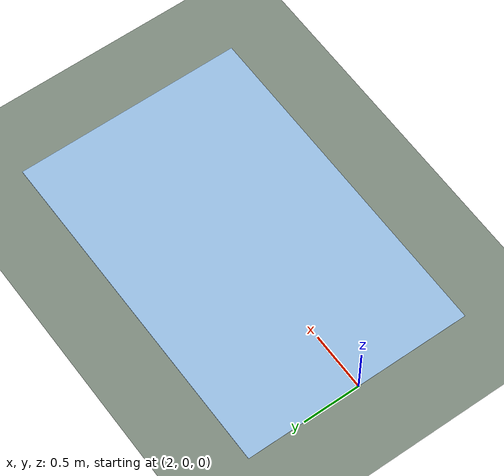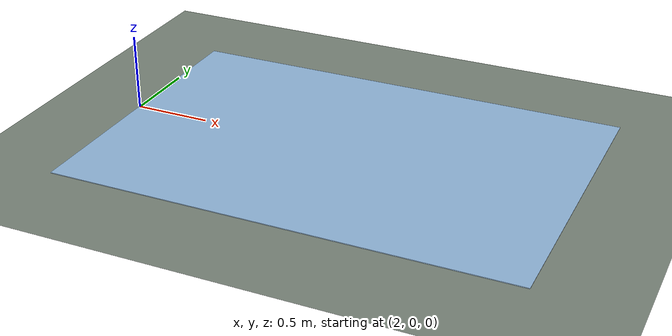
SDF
<?xml version="1.0"?>
<sdf version="1.10">
  <world name="hyperdog">
    <physics name="1ms" type="dart">
      <max_step_size>0.001</max_step_size>
      <real_time_factor>1.0</real_time_factor>
    </physics>
    <plugin filename="gz-sim-physics-system" name="gz::sim::systems::Physics"/>
    <plugin filename="gz-sim-user-commands-system" name="gz::sim::systems::UserCommands"/>
    <plugin filename="gz-sim-scene-broadcaster-system" name="gz::sim::systems::SceneBroadcaster"/>
    <plugin filename="gz-sim-sensors-system" name="gz::sim::systems::Sensors">
      <render_engine>ogre2</render_engine>
    </plugin>
    <plugin filename="gz-sim-imu-system" name="gz::sim::systems::Imu"/>
    <plugin filename="gz-sim-contact-system" name="gz::sim::systems::Contact"/>
    <plugin filename="gz-sim-apply-link-wrench-system" name="gz::sim::systems::ApplyLinkWrench"/>

    <gravity>0 0 -9.81</gravity>
    <scene>
      <ambient>0.6 0.6 0.6 1</ambient>
      <background>0.75 0.85 0.95 1</background>
      <grid>false</grid>
    </scene>
    <light type="directional" name="sun">
      <cast_shadows>true</cast_shadows>
      <pose>0 0 10 0 0 0</pose>
      <diffuse>0.9 0.9 0.9 1</diffuse>
      <specular>0.2 0.2 0.2 1</specular>
      <direction>-0.5 0.2 -0.9</direction>
    </light>

    <model name="ground_plane">
      <static>true</static>
      <link name="link">
        <collision name="collision">
          <geometry><plane><normal>0 0 1</normal><size>200 200</size></plane></geometry>
          <surface><friction><ode><mu>1.0</mu><mu2>1.0</mu2></ode></friction></surface>
        </collision>
        <visual name="visual">
          <geometry><plane><normal>0 0 1</normal><size>200 200</size></plane></geometry>
          <material><ambient>0.5 0.55 0.5 1</ambient><diffuse>0.5 0.55 0.5 1</diffuse></material>
        </visual>
      </link>
    </model>
    <model name="slippery_patch">
      <static>true</static>
      <pose>3.500 0.000 0.0025 0 0 0.000</pose>
      <link name="link">
        <collision name="collision"><geometry><box><size>3.000 2.000 0.0050</size></box></geometry>
          <surface><friction><ode><mu>0.3</mu><mu2>0.3</mu2></ode></friction></surface></collision>
        <visual name="visual"><geometry><box><size>3.000 2.000 0.0050</size></box></geometry>
          <material><ambient>0.6 0.75 0.9 1</ambient><diffuse>0.6 0.75 0.9 1</diffuse></material></visual>
      </link>
    </model>
  </world>
</sdf>
